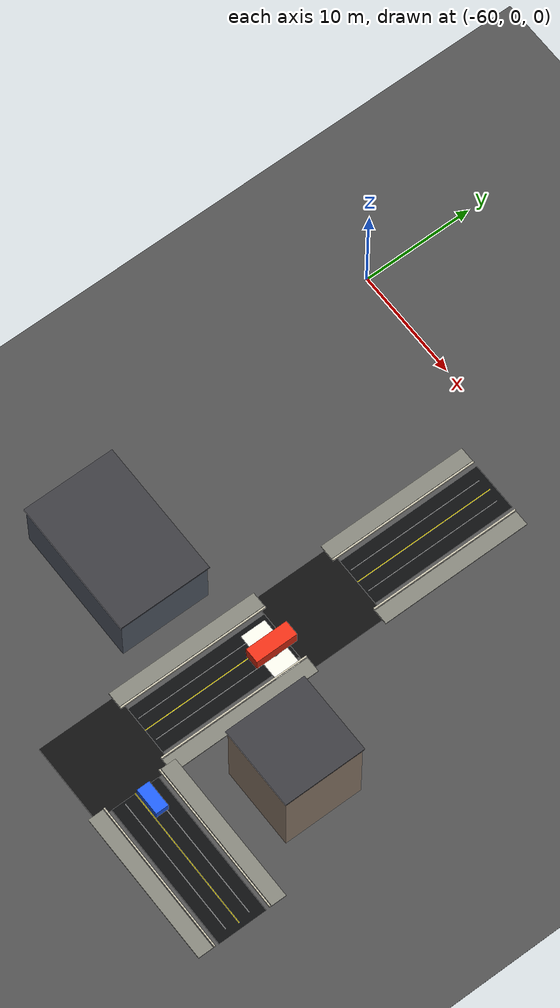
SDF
<sdf version="1.9">
 <world name="smart_city_world">
  <model name="ground">
   <static>true</static>
   <link name="link">
    <collision name="collision"><geometry><box><size>145 145 0.05</size></box></geometry></collision>
    <visual name="visual">
     <geometry><box><size>145 145 0.05</size></box></geometry>
     <material><ambient>0.30 0.30 0.30 1</ambient><diffuse>0.30 0.30 0.30 1</diffuse></material>
    </visual>
   </link>
  </model>
  <model name="road_e17">
   <static>true</static>
   <pose>-30.000 -40.000 0.018 0 0 0.000000</pose>
   <link name="link">
    <collision name="collision"><geometry><box><size>13.600 4.350 0.030</size></box></geometry></collision>
    <visual name="visual">
     <geometry><box><size>13.600 4.350 0.030</size></box></geometry>
     <material><ambient>0.045 0.047 0.05 1</ambient><diffuse>0.045 0.047 0.05 1</diffuse></material>
    </visual>
   </link>
  </model>
  <model name="center_line_e17">
   <static>true</static>
   <pose>-30.000 -40.000 0.052 0 0 0.000000</pose>
   <link name="link">
    <visual name="visual">
     <geometry><box><size>12.800 0.070 0.010</size></box></geometry>
     <material><ambient>1 0.86 0.05 1</ambient><diffuse>1 0.86 0.05 1</diffuse></material>
    </visual>
   </link>
  </model>
  <model name="sidewalk_e17_L">
   <static>true</static>
   <pose>-30.000 -36.650 0.075 0 0 0.000000</pose>
   <link name="link">
    <visual name="visual">
     <geometry><box><size>13.600 1.350 0.100</size></box></geometry>
     <material><ambient>0.5 0.5 0.46 1</ambient><diffuse>0.5 0.5 0.46 1</diffuse></material>
    </visual>
   </link>
  </model>
  <model name="curb_e17_L">
   <static>true</static>
   <pose>-30.000 -37.450 0.130 0 0 0.000000</pose>
   <link name="link">
    <visual name="visual">
     <geometry><box><size>13.600 0.120 0.180</size></box></geometry>
     <material><ambient>0.8 0.78 0.7 1</ambient><diffuse>0.8 0.78 0.7 1</diffuse></material>
    </visual>
   </link>
  </model>
  <model name="edge_line_e17_L">
   <static>true</static>
   <pose>-30.000 -38.920 0.054 0 0 0.000000</pose>
   <link name="link">
    <visual name="visual">
     <geometry><box><size>12.400 0.035 0.010</size></box></geometry>
     <material><ambient>0.85 0.85 0.85 1</ambient><diffuse>0.85 0.85 0.85 1</diffuse></material>
    </visual>
   </link>
  </model>
  <model name="sidewalk_e17_R">
   <static>true</static>
   <pose>-30.000 -43.350 0.075 0 0 0.000000</pose>
   <link name="link">
    <visual name="visual">
     <geometry><box><size>13.600 1.350 0.100</size></box></geometry>
     <material><ambient>0.5 0.5 0.46 1</ambient><diffuse>0.5 0.5 0.46 1</diffuse></material>
    </visual>
   </link>
  </model>
  <model name="curb_e17_R">
   <static>true</static>
   <pose>-30.000 -42.550 0.130 0 0 0.000000</pose>
   <link name="link">
    <visual name="visual">
     <geometry><box><size>13.600 0.120 0.180</size></box></geometry>
     <material><ambient>0.8 0.78 0.7 1</ambient><diffuse>0.8 0.78 0.7 1</diffuse></material>
    </visual>
   </link>
  </model>
  <model name="edge_line_e17_R">
   <static>true</static>
   <pose>-30.000 -41.080 0.054 0 0 0.000000</pose>
   <link name="link">
    <visual name="visual">
     <geometry><box><size>12.400 0.035 0.010</size></box></geometry>
     <material><ambient>0.85 0.85 0.85 1</ambient><diffuse>0.85 0.85 0.85 1</diffuse></material>
    </visual>
   </link>
  </model>
  <model name="road_e23">
   <static>true</static>
   <pose>-40.000 -10.000 0.018 0 0 -1.570796</pose>
   <link name="link">
    <collision name="collision"><geometry><box><size>13.600 4.350 0.030</size></box></geometry></collision>
    <visual name="visual">
     <geometry><box><size>13.600 4.350 0.030</size></box></geometry>
     <material><ambient>0.045 0.047 0.05 1</ambient><diffuse>0.045 0.047 0.05 1</diffuse></material>
    </visual>
   </link>
  </model>
  <model name="center_line_e23">
   <static>true</static>
   <pose>-40.000 -10.000 0.052 0 0 -1.570796</pose>
   <link name="link">
    <visual name="visual">
     <geometry><box><size>12.800 0.070 0.010</size></box></geometry>
     <material><ambient>1 0.86 0.05 1</ambient><diffuse>1 0.86 0.05 1</diffuse></material>
    </visual>
   </link>
  </model>
  <model name="sidewalk_e23_L">
   <static>true</static>
   <pose>-36.650 -10.000 0.075 0 0 -1.570796</pose>
   <link name="link">
    <visual name="visual">
     <geometry><box><size>13.600 1.350 0.100</size></box></geometry>
     <material><ambient>0.5 0.5 0.46 1</ambient><diffuse>0.5 0.5 0.46 1</diffuse></material>
    </visual>
   </link>
  </model>
  <model name="curb_e23_L">
   <static>true</static>
   <pose>-37.450 -10.000 0.130 0 0 -1.570796</pose>
   <link name="link">
    <visual name="visual">
     <geometry><box><size>13.600 0.120 0.180</size></box></geometry>
     <material><ambient>0.8 0.78 0.7 1</ambient><diffuse>0.8 0.78 0.7 1</diffuse></material>
    </visual>
   </link>
  </model>
  <model name="edge_line_e23_L">
   <static>true</static>
   <pose>-38.920 -10.000 0.054 0 0 -1.570796</pose>
   <link name="link">
    <visual name="visual">
     <geometry><box><size>12.400 0.035 0.010</size></box></geometry>
     <material><ambient>0.85 0.85 0.85 1</ambient><diffuse>0.85 0.85 0.85 1</diffuse></material>
    </visual>
   </link>
  </model>
  <model name="sidewalk_e23_R">
   <static>true</static>
   <pose>-43.350 -10.000 0.075 0 0 -1.570796</pose>
   <link name="link">
    <visual name="visual">
     <geometry><box><size>13.600 1.350 0.100</size></box></geometry>
     <material><ambient>0.5 0.5 0.46 1</ambient><diffuse>0.5 0.5 0.46 1</diffuse></material>
    </visual>
   </link>
  </model>
  <model name="curb_e23_R">
   <static>true</static>
   <pose>-42.550 -10.000 0.130 0 0 -1.570796</pose>
   <link name="link">
    <visual name="visual">
     <geometry><box><size>13.600 0.120 0.180</size></box></geometry>
     <material><ambient>0.8 0.78 0.7 1</ambient><diffuse>0.8 0.78 0.7 1</diffuse></material>
    </visual>
   </link>
  </model>
  <model name="edge_line_e23_R">
   <static>true</static>
   <pose>-41.080 -10.000 0.054 0 0 -1.570796</pose>
   <link name="link">
    <visual name="visual">
     <geometry><box><size>12.400 0.035 0.010</size></box></geometry>
     <material><ambient>0.85 0.85 0.85 1</ambient><diffuse>0.85 0.85 0.85 1</diffuse></material>
    </visual>
   </link>
  </model>
  <model name="road_e24">
   <static>true</static>
   <pose>-40.000 -30.000 0.018 0 0 -1.570796</pose>
   <link name="link">
    <collision name="collision"><geometry><box><size>13.600 4.350 0.030</size></box></geometry></collision>
    <visual name="visual">
     <geometry><box><size>13.600 4.350 0.030</size></box></geometry>
     <material><ambient>0.045 0.047 0.05 1</ambient><diffuse>0.045 0.047 0.05 1</diffuse></material>
    </visual>
   </link>
  </model>
  <model name="center_line_e24">
   <static>true</static>
   <pose>-40.000 -30.000 0.052 0 0 -1.570796</pose>
   <link name="link">
    <visual name="visual">
     <geometry><box><size>12.800 0.070 0.010</size></box></geometry>
     <material><ambient>1 0.86 0.05 1</ambient><diffuse>1 0.86 0.05 1</diffuse></material>
    </visual>
   </link>
  </model>
  <model name="sidewalk_e24_L">
   <static>true</static>
   <pose>-36.650 -30.000 0.075 0 0 -1.570796</pose>
   <link name="link">
    <visual name="visual">
     <geometry><box><size>13.600 1.350 0.100</size></box></geometry>
     <material><ambient>0.5 0.5 0.46 1</ambient><diffuse>0.5 0.5 0.46 1</diffuse></material>
    </visual>
   </link>
  </model>
  <model name="curb_e24_L">
   <static>true</static>
   <pose>-37.450 -30.000 0.130 0 0 -1.570796</pose>
   <link name="link">
    <visual name="visual">
     <geometry><box><size>13.600 0.120 0.180</size></box></geometry>
     <material><ambient>0.8 0.78 0.7 1</ambient><diffuse>0.8 0.78 0.7 1</diffuse></material>
    </visual>
   </link>
  </model>
  <model name="edge_line_e24_L">
   <static>true</static>
   <pose>-38.920 -30.000 0.054 0 0 -1.570796</pose>
   <link name="link">
    <visual name="visual">
     <geometry><box><size>12.400 0.035 0.010</size></box></geometry>
     <material><ambient>0.85 0.85 0.85 1</ambient><diffuse>0.85 0.85 0.85 1</diffuse></material>
    </visual>
   </link>
  </model>
  <model name="sidewalk_e24_R">
   <static>true</static>
   <pose>-43.350 -30.000 0.075 0 0 -1.570796</pose>
   <link name="link">
    <visual name="visual">
     <geometry><box><size>13.600 1.350 0.100</size></box></geometry>
     <material><ambient>0.5 0.5 0.46 1</ambient><diffuse>0.5 0.5 0.46 1</diffuse></material>
    </visual>
   </link>
  </model>
  <model name="curb_e24_R">
   <static>true</static>
   <pose>-42.550 -30.000 0.130 0 0 -1.570796</pose>
   <link name="link">
    <visual name="visual">
     <geometry><box><size>13.600 0.120 0.180</size></box></geometry>
     <material><ambient>0.8 0.78 0.7 1</ambient><diffuse>0.8 0.78 0.7 1</diffuse></material>
    </visual>
   </link>
  </model>
  <model name="edge_line_e24_R">
   <static>true</static>
   <pose>-41.080 -30.000 0.054 0 0 -1.570796</pose>
   <link name="link">
    <visual name="visual">
     <geometry><box><size>12.400 0.035 0.010</size></box></geometry>
     <material><ambient>0.85 0.85 0.85 1</ambient><diffuse>0.85 0.85 0.85 1</diffuse></material>
    </visual>
   </link>
  </model>
  <model name="intersection_plate_n16">
   <static>true</static>
   <pose>-40.000 -20.000 0.025 0 0 0.000000</pose>
   <link name="link">
    <collision name="collision"><geometry><box><size>7.200 7.200 0.035</size></box></geometry></collision>
    <visual name="visual">
     <geometry><box><size>7.200 7.200 0.035</size></box></geometry>
     <material><ambient>0.055 0.055 0.058 1</ambient><diffuse>0.055 0.055 0.058 1</diffuse></material>
    </visual>
   </link>
  </model>
  <model name="intersection_plate_n21">
   <static>true</static>
   <pose>-40.000 -40.000 0.025 0 0 0.000000</pose>
   <link name="link">
    <collision name="collision"><geometry><box><size>7.200 7.200 0.035</size></box></geometry></collision>
    <visual name="visual">
     <geometry><box><size>7.200 7.200 0.035</size></box></geometry>
     <material><ambient>0.055 0.055 0.058 1</ambient><diffuse>0.055 0.055 0.058 1</diffuse></material>
    </visual>
   </link>
  </model>
  <model name="parking_bus_3">
   <static>true</static>
   <pose>-39.400 -25.000 0.052 0 0 0.000000</pose>
   <link name="link">
    <collision name="collision"><geometry><box><size>4.700 2.250 0.050</size></box></geometry></collision>
    <visual name="visual">
     <geometry><box><size>4.700 2.250 0.050</size></box></geometry>
     <material><ambient>0.92 0.92 0.88 1</ambient><diffuse>0.92 0.92 0.88 1</diffuse></material>
    </visual>
   </link>
  </model>
  <model name="station">
   <static>true</static>
   <pose>-52.000 -30.000 2.500 0 0 0.000000</pose>
   <link name="link">
    <collision name="collision"><geometry><box><size>12.000 8.000 5.000</size></box></geometry></collision>
    <visual name="visual">
     <geometry><box><size>12.000 8.000 5.000</size></box></geometry>
     <material><ambient>0.35 0.38 0.43 1</ambient><diffuse>0.35 0.38 0.43 1</diffuse></material>
    </visual>
   </link>
  </model>
  <model name="station_roof">
   <static>true</static>
   <pose>-52.000 -30.000 5.080 0 0 0.000000</pose>
   <link name="link">
    <visual name="visual">
     <geometry><box><size>12.250 8.250 0.160</size></box></geometry>
     <material><ambient>0.22 0.22 0.24 1</ambient><diffuse>0.22 0.22 0.24 1</diffuse></material>
    </visual>
   </link>
  </model>
  <model name="apartment_a">
   <static>true</static>
   <pose>-30.000 -30.000 4.000 0 0 0.000000</pose>
   <link name="link">
    <collision name="collision"><geometry><box><size>7.000 7.000 8.000</size></box></geometry></collision>
    <visual name="visual">
     <geometry><box><size>7.000 7.000 8.000</size></box></geometry>
     <material><ambient>0.6 0.52 0.45 1</ambient><diffuse>0.6 0.52 0.45 1</diffuse></material>
    </visual>
   </link>
  </model>
  <model name="apartment_a_roof">
   <static>true</static>
   <pose>-30.000 -30.000 8.080 0 0 0.000000</pose>
   <link name="link">
    <visual name="visual">
     <geometry><box><size>7.250 7.250 0.160</size></box></geometry>
     <material><ambient>0.22 0.22 0.24 1</ambient><diffuse>0.22 0.22 0.24 1</diffuse></material>
    </visual>
   </link>
  </model>
  <model name="bus_3">
   <pose>-39.400 -25.000 0.28 0 0 -1.5700</pose>
   <link name="base_link">
    <inertial>
     <pose>0 0 0.22 0 0 0</pose>
     <mass>3500</mass>
     <inertia><ixx>825</ixx><iyy>4500</iyy><izz>4750</izz><ixy>0</ixy><ixz>0</ixz><iyz>0</iyz></inertia>
    </inertial>
    <collision name="body_collision">
     <pose>0 0 0.60 0 0 0</pose>
     <geometry><box><size>3.8 1.35 1.0</size></box></geometry>
     <surface>
      <friction><ode><mu>4.0</mu><mu2>4.0</mu2><slip1>0.0</slip1><slip2>0.0</slip2></ode></friction>
      <contact>
       <ode><kp>1500000</kp><kd>30000</kd><max_vel>0.05</max_vel><min_depth>0.001</min_depth></ode>
      </contact>
      <bounce><restitution_coefficient>0.0</restitution_coefficient><threshold>100000.0</threshold></bounce>
     </surface>
    </collision>
    <visual name="body_visual">
     <pose>0 0 0.975 0 0 0</pose>
     <geometry><box><size>3.8 1.35 1.25</size></box></geometry>
     <material><ambient>0.90 0.18 0.08 1</ambient><diffuse>0.90 0.18 0.08 1</diffuse></material>
    </visual>
    <sensor name="lidar" type="gpu_lidar">
     <pose>2.020 0 1.750 0 0 0</pose>
     <topic>/bus_3/scan</topic>
     <update_rate>10</update_rate>
     <lidar>
      <scan>
       <horizontal>
        <samples>360</samples>
        <resolution>1</resolution>
        <min_angle>-3.14159</min_angle>
        <max_angle>3.14159</max_angle>
       </horizontal>
      </scan>
      <range><min>0.12</min><max>18.0</max><resolution>0.03</resolution></range>
     </lidar>
     <always_on>1</always_on>
     <visualize>false</visualize>
    </sensor>
   </link>
   <link name="left_wheel">
    <pose>0 0.525 0.220 1.5708 0 0</pose>
    <collision name="collision">
     <geometry><cylinder><radius>0.22</radius><length>0.16</length></cylinder></geometry>
     <surface>
      <friction><ode><mu>4.0</mu><mu2>4.0</mu2><slip1>0.0</slip1><slip2>0.0</slip2></ode></friction>
      <contact>
       <ode><kp>1500000</kp><kd>30000</kd><max_vel>0.05</max_vel><min_depth>0.001</min_depth></ode>
      </contact>
      <bounce><restitution_coefficient>0.0</restitution_coefficient><threshold>100000.0</threshold></bounce>
     </surface>
    </collision>
    <visual name="visual">
     <geometry><cylinder><radius>0.22</radius><length>0.16</length></cylinder></geometry>
     <material><ambient>0.01 0.01 0.01 1</ambient><diffuse>0.01 0.01 0.01 1</diffuse></material>
    </visual>
   </link>
   <link name="right_wheel">
    <pose>0 -0.525 0.220 1.5708 0 0</pose>
    <collision name="collision">
     <geometry><cylinder><radius>0.22</radius><length>0.16</length></cylinder></geometry>
     <surface>
      <friction><ode><mu>4.0</mu><mu2>4.0</mu2><slip1>0.0</slip1><slip2>0.0</slip2></ode></friction>
      <contact>
       <ode><kp>1500000</kp><kd>30000</kd><max_vel>0.05</max_vel><min_depth>0.001</min_depth></ode>
      </contact>
      <bounce><restitution_coefficient>0.0</restitution_coefficient><threshold>100000.0</threshold></bounce>
     </surface>
    </collision>
    <visual name="visual">
     <geometry><cylinder><radius>0.22</radius><length>0.16</length></cylinder></geometry>
     <material><ambient>0.01 0.01 0.01 1</ambient><diffuse>0.01 0.01 0.01 1</diffuse></material>
    </visual>
   </link>
   <joint name="left_wheel_joint" type="revolute">
    <parent>base_link</parent>
    <child>left_wheel</child>
    <axis>
     <xyz>0 0 1</xyz>
     <limit><lower>-1e16</lower><upper>1e16</upper></limit>
     <dynamics><damping>3</damping><friction>1</friction></dynamics>
    </axis>
   </joint>
   <joint name="right_wheel_joint" type="revolute">
    <parent>base_link</parent>
    <child>right_wheel</child>
    <axis>
     <xyz>0 0 1</xyz>
     <limit><lower>-1e16</lower><upper>1e16</upper></limit>
     <dynamics><damping>3</damping><friction>1</friction></dynamics>
    </axis>
   </joint>
   <plugin filename="gz-sim-diff-drive-system" name="gz::sim::systems::DiffDrive">
    <left_joint>left_wheel_joint</left_joint>
    <right_joint>right_wheel_joint</right_joint>
    <wheel_separation>1.05</wheel_separation>
    <wheel_radius>0.22</wheel_radius>
    <topic>/bus_3/cmd_vel</topic>
    <odom_topic>/bus_3/odom</odom_topic>
    <frame_id>bus_3/odom</frame_id>
    <child_frame_id>bus_3/base_link</child_frame_id>
    <odom_publish_frequency>30</odom_publish_frequency>
   </plugin>
   <plugin filename="libmodel_world_pose_publisher.so" name="smart_city::ModelWorldPosePublisher"/>
  </model>
  <model name="private_car_1">
   <pose>-35.000 -39.400 0.28 0 0 0.0000</pose>
   <link name="base_link">
    <inertial>
     <pose>0 0 0.18 0 0 0</pose>
     <mass>1200</mass>
     <inertia><ixx>190</ixx><iyy>635</iyy><izz>710</izz><ixy>0</ixy><ixz>0</ixz><iyz>0</iyz></inertia>
    </inertial>
    <collision name="body_collision">
     <pose>0 0 0.48 0 0 0</pose>
     <geometry><box><size>2.4 1.15 0.75</size></box></geometry>
     <surface>
      <friction><ode><mu>4.0</mu><mu2>4.0</mu2><slip1>0.0</slip1><slip2>0.0</slip2></ode></friction>
      <contact>
       <ode><kp>1200000</kp><kd>24000</kd><max_vel>0.05</max_vel><min_depth>0.001</min_depth></ode>
      </contact>
      <bounce><restitution_coefficient>0.0</restitution_coefficient><threshold>100000.0</threshold></bounce>
     </surface>
    </collision>
    <visual name="body_visual">
     <pose>0 0 0.48 0 0 0</pose>
     <geometry><box><size>2.4 1.15 0.75</size></box></geometry>
     <material><ambient>0.12 0.36 0.95 1</ambient><diffuse>0.12 0.36 0.95 1</diffuse></material>
    </visual>
    <sensor name="lidar" type="gpu_lidar">
     <pose>1.220 0 1.250 0 0 0</pose>
     <topic>/private_car_1/scan</topic>
     <update_rate>10</update_rate>
     <lidar>
      <scan>
       <horizontal>
        <samples>360</samples>
        <resolution>1</resolution>
        <min_angle>-3.14159</min_angle>
        <max_angle>3.14159</max_angle>
       </horizontal>
      </scan>
      <range><min>0.12</min><max>18.0</max><resolution>0.03</resolution></range>
     </lidar>
     <always_on>1</always_on>
     <visualize>false</visualize>
    </sensor>
   </link>
   <link name="left_wheel">
    <pose>0 0.425 0.170 1.5708 0 0</pose>
    <collision name="collision">
     <geometry><cylinder><radius>0.17</radius><length>0.16</length></cylinder></geometry>
     <surface>
      <friction><ode><mu>4.0</mu><mu2>4.0</mu2><slip1>0.0</slip1><slip2>0.0</slip2></ode></friction>
      <contact>
       <ode><kp>1200000</kp><kd>24000</kd><max_vel>0.05</max_vel><min_depth>0.001</min_depth></ode>
      </contact>
      <bounce><restitution_coefficient>0.0</restitution_coefficient><threshold>100000.0</threshold></bounce>
     </surface>
    </collision>
    <visual name="visual">
     <geometry><cylinder><radius>0.17</radius><length>0.16</length></cylinder></geometry>
     <material><ambient>0.01 0.01 0.01 1</ambient><diffuse>0.01 0.01 0.01 1</diffuse></material>
    </visual>
   </link>
   <link name="right_wheel">
    <pose>0 -0.425 0.170 1.5708 0 0</pose>
    <collision name="collision">
     <geometry><cylinder><radius>0.17</radius><length>0.16</length></cylinder></geometry>
     <surface>
      <friction><ode><mu>4.0</mu><mu2>4.0</mu2><slip1>0.0</slip1><slip2>0.0</slip2></ode></friction>
      <contact>
       <ode><kp>1200000</kp><kd>24000</kd><max_vel>0.05</max_vel><min_depth>0.001</min_depth></ode>
      </contact>
      <bounce><restitution_coefficient>0.0</restitution_coefficient><threshold>100000.0</threshold></bounce>
     </surface>
    </collision>
    <visual name="visual">
     <geometry><cylinder><radius>0.17</radius><length>0.16</length></cylinder></geometry>
     <material><ambient>0.01 0.01 0.01 1</ambient><diffuse>0.01 0.01 0.01 1</diffuse></material>
    </visual>
   </link>
   <joint name="left_wheel_joint" type="revolute">
    <parent>base_link</parent>
    <child>left_wheel</child>
    <axis>
     <xyz>0 0 1</xyz>
     <limit><lower>-1e16</lower><upper>1e16</upper></limit>
     <dynamics><damping>2.5</damping><friction>0.8</friction></dynamics>
    </axis>
   </joint>
   <joint name="right_wheel_joint" type="revolute">
    <parent>base_link</parent>
    <child>right_wheel</child>
    <axis>
     <xyz>0 0 1</xyz>
     <limit><lower>-1e16</lower><upper>1e16</upper></limit>
     <dynamics><damping>2.5</damping><friction>0.8</friction></dynamics>
    </axis>
   </joint>
   <plugin filename="gz-sim-diff-drive-system" name="gz::sim::systems::DiffDrive">
    <left_joint>left_wheel_joint</left_joint>
    <right_joint>right_wheel_joint</right_joint>
    <wheel_separation>0.85</wheel_separation>
    <wheel_radius>0.17</wheel_radius>
    <topic>/private_car_1/cmd_vel</topic>
    <odom_topic>/private_car_1/odom</odom_topic>
    <frame_id>private_car_1/odom</frame_id>
    <child_frame_id>private_car_1/base_link</child_frame_id>
    <odom_publish_frequency>30</odom_publish_frequency>
   </plugin>
   <plugin filename="libmodel_world_pose_publisher.so" name="smart_city::ModelWorldPosePublisher"/>
  </model>
 </world>
</sdf>
